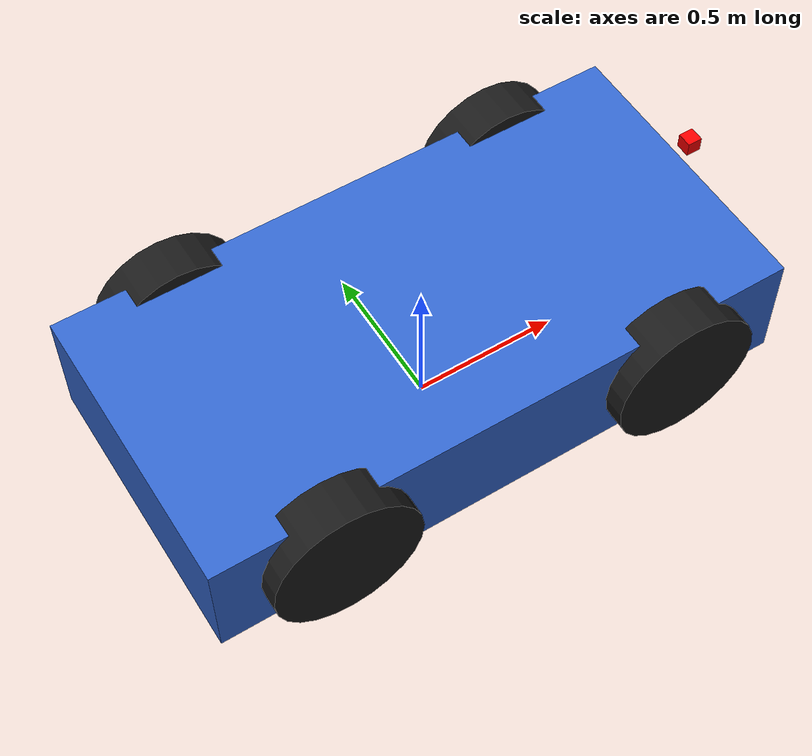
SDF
<?xml version="1.0"?>
<sdf version="1.9">
  <model name="ackermann_car">

    <!-- Chassis -->
    <link name="chassis">
      <pose>0 0 0.3 0 0 0</pose>

      <inertial>
        <mass>50.0</mass>
        <inertia>
          <ixx>5.0</ixx>
          <iyy>5.0</iyy>
          <izz>5.0</izz>
        </inertia>
      </inertial>

      <collision name="collision">
        <geometry>
          <box>
            <size>2.0 1.0 0.4</size>
          </box>
        </geometry>
      </collision>

      <visual name="visual">
        <geometry>
          <box>
            <size>2.0 1.0 0.4</size>
          </box>
        </geometry>
        <material>
          <ambient>0.2 0.4 0.8 1.0</ambient>
          <diffuse>0.2 0.4 0.8 1.0</diffuse>
        </material>
      </visual>
    </link>

    <!-- Front Camera -->
    <link name="camera_link">
      <pose relative_to="chassis">1.0 0 0.3 0 0 0</pose>

      <inertial>
        <mass>0.1</mass>
        <inertia>
          <ixx>0.001</ixx>
          <iyy>0.001</iyy>
          <izz>0.001</izz>
        </inertia>
      </inertial>

      <visual name="visual">
        <geometry>
          <box>
            <size>0.05 0.05 0.05</size>
          </box>
        </geometry>
        <material>
          <ambient>1.0 0.0 0.0 1.0</ambient>
          <diffuse>1.0 0.0 0.0 1.0</diffuse>
        </material>
      </visual>

      <sensor name="camera" type="camera">
        <camera>
          <horizontal_fov>1.047</horizontal_fov>
          <image>
            <width>640</width>
            <height>480</height>
          </image>
          <clip>
            <near>0.1</near>
            <far>100</far>
          </clip>
        </camera>
        <always_on>1</always_on>
        <update_rate>30</update_rate>
        <visualize>true</visualize>
        <topic>/camera/image_raw</topic>
      </sensor>
    </link>

    <joint name="camera_joint" type="fixed">
      <parent>chassis</parent>
      <child>camera_link</child>
    </joint>

    <!-- Front Left Steering Hub -->
    <link name="front_left_steering_hub">
      <pose relative_to="chassis">0.6 0.5 0 0 0 0</pose>
      <inertial>
        <mass>1.0</mass>
        <inertia>
          <ixx>0.01</ixx>
          <iyy>0.01</iyy>
          <izz>0.01</izz>
        </inertia>
      </inertial>
    </link>

    <joint name="front_left_steering_joint" type="revolute">
      <parent>chassis</parent>
      <child>front_left_steering_hub</child>
      <axis>
        <xyz>0 0 1</xyz>
        <limit>
          <lower>-0.7</lower>
          <upper>0.7</upper>
        </limit>
      </axis>
    </joint>

    <!-- Front Right Steering Hub -->
    <link name="front_right_steering_hub">
      <pose relative_to="chassis">0.6 -0.5 0 0 0 0</pose>
      <inertial>
        <mass>1.0</mass>
        <inertia>
          <ixx>0.01</ixx>
          <iyy>0.01</iyy>
          <izz>0.01</izz>
        </inertia>
      </inertial>
    </link>

    <joint name="front_right_steering_joint" type="revolute">
      <parent>chassis</parent>
      <child>front_right_steering_hub</child>
      <axis>
        <xyz>0 0 1</xyz>
        <limit>
          <lower>-0.7</lower>
          <upper>0.7</upper>
        </limit>
      </axis>
    </joint>

    <!-- Front Left Wheel -->
    <link name="front_left_wheel">
      <pose relative_to="front_left_steering_hub">0 0 0 -1.5708 0 0</pose>

      <inertial>
        <mass>2.0</mass>
        <inertia>
          <ixx>0.05</ixx>
          <iyy>0.05</iyy>
          <izz>0.05</izz>
        </inertia>
      </inertial>

      <collision name="collision">
        <geometry>
          <cylinder>
            <radius>0.25</radius>
            <length>0.15</length>
          </cylinder>
        </geometry>
        <surface>
          <friction>
            <ode>
              <mu>1.0</mu>
              <mu2>1.0</mu2>
            </ode>
          </friction>
        </surface>
      </collision>

      <visual name="visual">
        <geometry>
          <cylinder>
            <radius>0.25</radius>
            <length>0.15</length>
          </cylinder>
        </geometry>
        <material>
          <ambient>0.1 0.1 0.1 1.0</ambient>
          <diffuse>0.1 0.1 0.1 1.0</diffuse>
        </material>
      </visual>
    </link>

    <joint name="front_left_wheel_joint" type="revolute">
      <parent>front_left_steering_hub</parent>
      <child>front_left_wheel</child>
      <axis>
        <xyz>0 0 1</xyz>
      </axis>
    </joint>

    <!-- Front Right Wheel -->
    <link name="front_right_wheel">
      <pose relative_to="front_right_steering_hub">0 0 0 -1.5708 0 0</pose>

      <inertial>
        <mass>2.0</mass>
        <inertia>
          <ixx>0.05</ixx>
          <iyy>0.05</iyy>
          <izz>0.05</izz>
        </inertia>
      </inertial>

      <collision name="collision">
        <geometry>
          <cylinder>
            <radius>0.25</radius>
            <length>0.15</length>
          </cylinder>
        </geometry>
        <surface>
          <friction>
            <ode>
              <mu>1.0</mu>
              <mu2>1.0</mu2>
            </ode>
          </friction>
        </surface>
      </collision>

      <visual name="visual">
        <geometry>
          <cylinder>
            <radius>0.25</radius>
            <length>0.15</length>
          </cylinder>
        </geometry>
        <material>
          <ambient>0.1 0.1 0.1 1.0</ambient>
          <diffuse>0.1 0.1 0.1 1.0</diffuse>
        </material>
      </visual>
    </link>

    <joint name="front_right_wheel_joint" type="revolute">
      <parent>front_right_steering_hub</parent>
      <child>front_right_wheel</child>
      <axis>
        <xyz>0 0 1</xyz>
      </axis>
    </joint>

    <!-- Rear Left Wheel -->
    <link name="rear_left_wheel">
      <pose relative_to="chassis">-0.6 0.5 0 -1.5708 0 0</pose>

      <inertial>
        <mass>2.0</mass>
        <inertia>
          <ixx>0.05</ixx>
          <iyy>0.05</iyy>
          <izz>0.05</izz>
        </inertia>
      </inertial>

      <collision name="collision">
        <geometry>
          <cylinder>
            <radius>0.25</radius>
            <length>0.15</length>
          </cylinder>
        </geometry>
        <surface>
          <friction>
            <ode>
              <mu>1.0</mu>
              <mu2>1.0</mu2>
            </ode>
          </friction>
        </surface>
      </collision>

      <visual name="visual">
        <geometry>
          <cylinder>
            <radius>0.25</radius>
            <length>0.15</length>
          </cylinder>
        </geometry>
        <material>
          <ambient>0.1 0.1 0.1 1.0</ambient>
          <diffuse>0.1 0.1 0.1 1.0</diffuse>
        </material>
      </visual>
    </link>

    <joint name="rear_left_wheel_joint" type="revolute">
      <parent>chassis</parent>
      <child>rear_left_wheel</child>
      <axis>
        <xyz>0 0 1</xyz>
      </axis>
    </joint>

    <!-- Rear Right Wheel -->
    <link name="rear_right_wheel">
      <pose relative_to="chassis">-0.6 -0.5 0 -1.5708 0 0</pose>

      <inertial>
        <mass>2.0</mass>
        <inertia>
          <ixx>0.05</ixx>
          <iyy>0.05</iyy>
          <izz>0.05</izz>
        </inertia>
      </inertial>

      <collision name="collision">
        <geometry>
          <cylinder>
            <radius>0.25</radius>
            <length>0.15</length>
          </cylinder>
        </geometry>
        <surface>
          <friction>
            <ode>
              <mu>1.0</mu>
              <mu2>1.0</mu2>
            </ode>
          </friction>
        </surface>
      </collision>

      <visual name="visual">
        <geometry>
          <cylinder>
            <radius>0.25</radius>
            <length>0.15</length>
          </cylinder>
        </geometry>
        <material>
          <ambient>0.1 0.1 0.1 1.0</ambient>
          <diffuse>0.1 0.1 0.1 1.0</diffuse>
        </material>
      </visual>
    </link>

    <joint name="rear_right_wheel_joint" type="revolute">
      <parent>chassis</parent>
      <child>rear_right_wheel</child>
      <axis>
        <xyz>0 0 1</xyz>
      </axis>
    </joint>

    <!-- Ackermann Steering Plugin -->
    <plugin
      filename="gz-sim-ackermann-steering-system"
      name="gz::sim::systems::AckermannSteering">
      <left_joint>rear_left_wheel_joint</left_joint>
      <right_joint>rear_right_wheel_joint</right_joint>
      <left_steering_joint>front_right_steering_joint</left_steering_joint>
      <right_steering_joint>front_left_steering_joint</right_steering_joint>
      <wheel_base>1.2</wheel_base>
      <wheel_separation>1.0</wheel_separation>
      <steering_limit>0.7</steering_limit>
      <wheel_radius>0.25</wheel_radius>
      <min_velocity>-5.0</min_velocity>
      <max_velocity>5.0</max_velocity>
      <min_acceleration>-3.0</min_acceleration>
      <max_acceleration>3.0</max_acceleration>
      <topic>/cmd_vel</topic>
    </plugin>

  </model>
</sdf>
